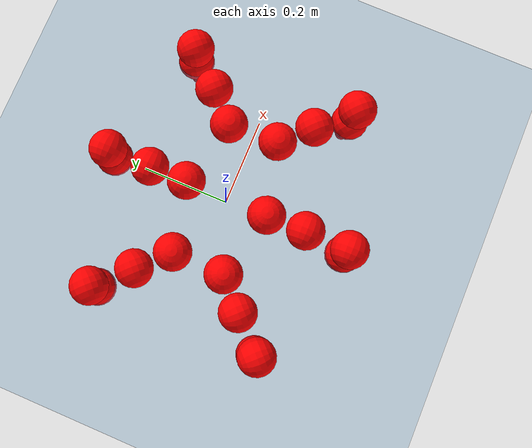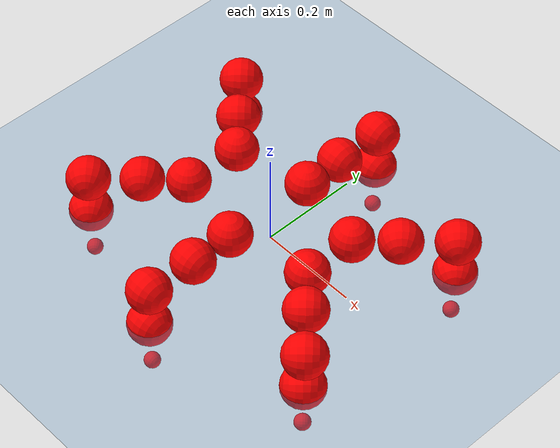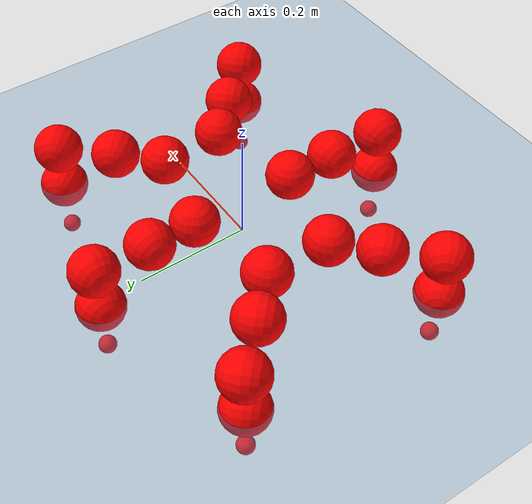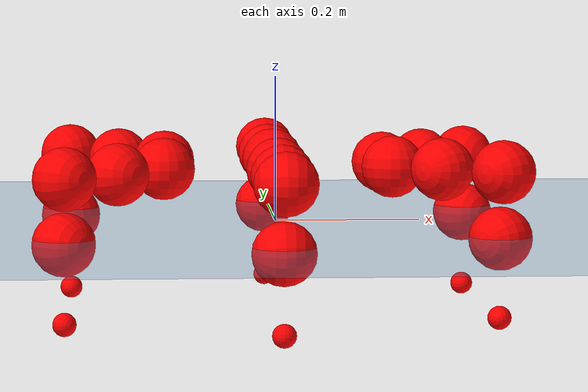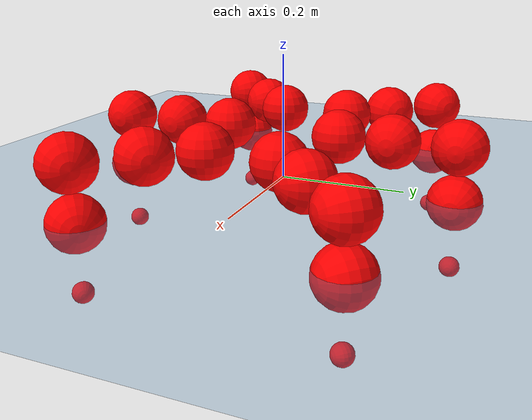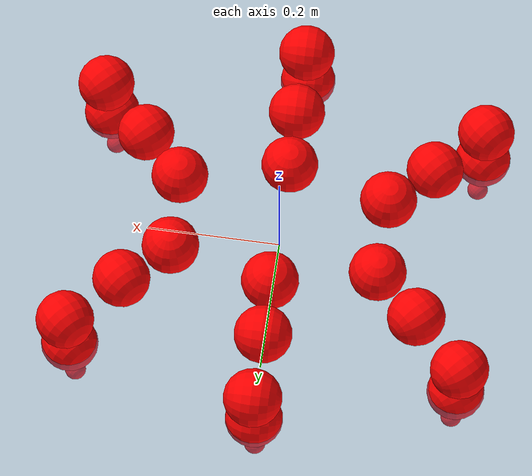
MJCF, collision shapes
<mujoco model="Golem">
  <compiler angle="radian" assetdir="assets" balanceinertia="true" inertiafromgeom="false"/>

  <option timestep="0.005" density="1.2" viscosity="2e-05"/>

  <size nkey="1"/>

  <visual>
    <quality shadowsize="8192"/>
    <map shadowclip="0.5"/>
  </visual>

  <default>
    <default class="/">
      <joint armature="0.01" damping="0.01" frictionloss="0.01"/>
      <geom contype="0" conaffinity="0" group="1" solref="-1000 -80"/>
      <site size="0.01 0.005 0.005" group="5"/>
      <general forcelimited="true" biastype="affine" gainprm="25" biasprm="0 -25 -0.5"/>
      <default class="visual">
        <geom type="mesh" group="2"/>
      </default>
      <default class="collision">
        <geom group="3"/>
      </default>
      <default class="foot">
        <geom size="0.01 0 0" condim="6" group="4" priority="1" solimp="0.015 1 0.01"/>
      </default>
      <default class="reward_collision_sphere">
        <geom group="5" rgba="1 0 0 1"/>
      </default>
    </default>
  </default>

  <asset>
    <texture type="skybox" colorspace="auto" name="//unnamed_texture_0" builtin="gradient" rgb1="0.95 0.95 0.95" rgb2="0.95 0.95 0.95" width="100" height="600"/>
    <texture type="2d" colorspace="auto" name="texplane" builtin="checker" rgb1="0.345 0.575 0.748" rgb2="0.345 0.575 0.748" markrgb="1 1 1" width="512" height="512"/>
    <material name="MatPlane" class="/" texture="texplane" texuniform="true" texrepeat="2 2" specular="0.9"/>
    <mesh name="body" class="/" file="body.stl" scale="0.001 0.001 0.001"/>
    <mesh name="coxa" class="/" file="coxa.stl" scale="0.001 0.001 0.001"/>
    <mesh name="femur" class="/" file="femur.stl" scale="0.001 0.001 0.001"/>
    <mesh name="tibia" class="/" file="tibia.stl" scale="0.001 0.001 0.001"/>
    <mesh name="tarsus" class="/" file="tarsus.stl" scale="0.001 0.001 0.001"/>
  </asset>

  <worldbody>
    <geom name="floor" class="/" size="100 100 0.125" type="plane" group="0" material="MatPlane"/>
    <light name="toplight_shadow" class="/" pos="0 0 5" dir="0.0990148 0.0990148 -0.990148" type="directional" ambient="0.04 0.04 0.04" diffuse="0.55 0.55 0.55" specular="0.12 0.12 0.12"/>
    <light name="toplight_fill" class="/" pos="0 0 5" dir="0.0990148 0.0990148 -0.990148" type="directional" castshadow="false" ambient="0.04 0.04 0.04" diffuse="0.3 0.3 0.3" specular="0.08 0.08 0.08"/>
    <body name="trunk" pos="-0.000135608 -0.00152955 -0.00178764" quat="1 0.00010708 0.000129715 0.000240043">
      <inertial pos="0.00313089 -0.00304039 -0.000688936" quat="0.99991 0.00965158 0.00914287 -0.00153353" mass="4.29932" diaginertia="0.00882242 0.00703886 0.0309573"/>
      <joint name="//unnamed_joint_0" type="free"/>
      <geom name="//unnamed_geom_1" class="/" pos="0 0 0.0802493" quat="1 0 0 0" type="mesh" rgba="0.9 0.9 0.9 1" mesh="body"/>
      <site name="imu" class="/" pos="0.11596 0.0016241 0.115794" size="0.0106121"/>
      <camera name="track" class="/" pos="0 -1.88849 0" quat="0.707107 0.707107 0 0" mode="trackcom"/>
      <camera name="ego_camera" class="/" pos="0.128113 0 0.125389" quat="-0.5 -0.5 0.5 0.5"/>
      <body name="coxa_RR" pos="-0.175919 -0.0791738 0.0800442" quat="0.382768 0.000603205 -0.000937399 -0.923844">
        <inertial pos="0.00100266 0.00263447 -0.00206722" quat="0.99991 -0.00673173 -0.000748916 0.011584" mass="0.23153" diaginertia="0.00872035 0.00723044 0.0290496"/>
        <joint name="coxa_joint_RR" class="/" pos="0 0 0" axis="-0.00592008 0.00681444 -0.999959" stiffness="0.00901133" range="-3.08491 3.08606" armature="0.0114591" damping="0" frictionloss="0.0120618"/>
        <geom name="//unnamed_geom_2" class="/" type="mesh" rgba="0.2 0.2 0.2 1" mesh="coxa"/>
        <geom name="//unnamed_geom_3" class="reward_collision_sphere" size="0.0424483" pos="-0.0295646 0 0"/>
        <body name="femur_RR" pos="0.0567389 -0.00208495 -0.00185358" quat="0.499591 -0.500161 0.499895 0.500353">
          <inertial pos="-0.000433514 -0.00165649 0.00233608" quat="0.999955 -0.00305884 0.00691587 -0.00567716" mass="0.239357" diaginertia="0.00956275 0.00727813 0.03091"/>
          <joint name="femur_joint_RR" class="/" pos="0 0 0" axis="-0.00272902 0.00264438 -0.999993" range="-3.08639 3.08552" armature="0.0107222" damping="0.0199385" frictionloss="0.010512"/>
          <geom name="//unnamed_geom_4" class="/" type="mesh" rgba="0.9 0.9 0.9 1" mesh="femur"/>
          <geom name="//unnamed_geom_5" class="reward_collision_sphere" size="0.0424483"/>
          <body name="tibia_RR" pos="-0.001281 -0.0997251 0.0017489" quat="9.74975e-05 1 8.8187e-05 0.000176739">
            <inertial pos="0.00087337 -0.000947757 0.00166624" quat="1 -9.59215e-06 4.7258e-05 -3.70699e-05" mass="0.237547" diaginertia="0.00920583 0.00747377 0.0304432"/>
            <joint name="tibia_joint_RR" class="/" pos="0 0 0" axis="0.00071654 -0.0024749 0.999997" stiffness="0.00280452" range="-3.15915 3.17695" armature="0.00930828" damping="0.0184497" frictionloss="0.00931263"/>
            <geom name="//unnamed_geom_6" class="/" type="mesh" rgba="0.2 0.2 0.2 1" mesh="tibia"/>
            <geom name="//unnamed_geom_7" class="reward_collision_sphere" size="0.0424483"/>
            <body name="tarsus_RR" pos="0.0861761 0.000875349 0.00142265" quat="0.999999 -0.000318771 -0.00110064 0.000296744">
              <inertial pos="0.0621313 -0.00130564 0.00144241" quat="0.507773 0.492794 0.504458 0.494816" mass="0.239082" diaginertia="0.0095127 0.00729407 0.0301716"/>
              <joint name="tarsus_joint_RR" class="/" pos="0 0 0" axis="0.00792584 -0.00474343 0.999957" range="-3.18545 3.13472" armature="0.00922633" damping="0.0112285" frictionloss="0.0111341"/>
              <geom name="//unnamed_geom_8" class="/" type="mesh" rgba="0.9 0.9 0.9 1" mesh="tarsus"/>
              <geom name="foot_1" class="foot" size="0.0105336" pos="0.110374 0 0" quat="0 -0.707107 0 0.707107"/>
              <geom name="//unnamed_geom_10" class="reward_collision_sphere" size="0.0424483"/>
              <geom name="//unnamed_geom_11" class="reward_collision_sphere" size="0.0159181" pos="0.10594 0 0"/>
              <site name="foot_1" class="foot" pos="0.110374 0 0" quat="0 -0.707107 0 0.707107" size="0.0106121"/>
            </body>
          </body>
        </body>
      </body>
      <body name="coxa_RM" pos="-0.00220073 -0.12428 0.082405" quat="0.706911 -0.00077677 -0.000599532 -0.707302">
        <inertial pos="0.00040247 0.000443235 -0.000169981" quat="0.999956 0.000648214 -0.00831063 0.00432999" mass="0.225734" diaginertia="0.00902554 0.00721788 0.0305771"/>
        <joint name="coxa_joint_RM" class="/" pos="0 0 0" axis="0.00646306 0.00479606 -0.999968" range="-3.13978 3.09055" armature="0.00930569" damping="0.0255149" frictionloss="0.0115224"/>
        <geom name="//unnamed_geom_12" class="/" type="mesh" rgba="0.2 0.2 0.2 1" mesh="coxa"/>
        <geom name="//unnamed_geom_13" class="reward_collision_sphere" size="0.0424483" pos="-0.0295646 0 0"/>
        <body name="femur_RM" pos="0.0607152 0.00168606 -0.00149559" quat="0.500055 -0.499803 0.500287 0.499855">
          <inertial pos="-0.000629918 0.00126578 -0.000956504" quat="0.999972 0.00734917 0.0005501 0.00129533" mass="0.245584" diaginertia="0.00926315 0.00757274 0.0299586"/>
          <joint name="femur_joint_RM" class="/" pos="0 0 0" axis="0.00157546 0.00219856 -0.999996" stiffness="0.00394935" range="-3.12895 3.18925" armature="0.011316" damping="0.0186343" frictionloss="0.0104449"/>
          <geom name="//unnamed_geom_14" class="/" type="mesh" rgba="0.9 0.9 0.9 1" mesh="femur"/>
          <geom name="//unnamed_geom_15" class="reward_collision_sphere" size="0.0424483"/>
          <body name="tibia_RM" pos="-0.00013719 -0.101949 -0.00107372" quat="0.000201477 1 -0.000140874 0.000322647">
            <inertial pos="-2.70956e-05 0.000233224 0.000926694" quat="0.999955 0.00165122 0.00924499 -0.00157145" mass="0.236954" diaginertia="0.00940926 0.00757497 0.0300991"/>
            <joint name="tibia_joint_RM" class="/" pos="0 0 0" axis="0.00314722 -0.00348876 0.999989" range="-3.08598 3.1698" armature="0.0112001" damping="0.0187574" frictionloss="0.0101557"/>
            <geom name="//unnamed_geom_16" class="/" type="mesh" rgba="0.2 0.2 0.2 1" mesh="tibia"/>
            <geom name="//unnamed_geom_17" class="reward_collision_sphere" size="0.0424483"/>
            <body name="tarsus_RM" pos="0.0893673 0.00184695 0.00249689" quat="1 -0.000655771 0.000199228 -0.000160749">
              <inertial pos="0.0583793 -0.00208104 -0.000522937" quat="0.496323 0.501829 0.499489 0.502336" mass="0.239546" diaginertia="0.00924098 0.00742097 0.0306412"/>
              <joint name="tarsus_joint_RM" class="/" pos="0 0 0" axis="-0.0133044 -2.77169e-05 0.999911" range="-3.08487 3.09879" armature="0.00923158" damping="0.00287443" frictionloss="0.011789"/>
              <geom name="//unnamed_geom_18" class="/" type="mesh" rgba="0.9 0.9 0.9 1" mesh="tarsus"/>
              <geom name="foot_2" class="foot" size="0.00982257" pos="0.110374 0 0" quat="0 -0.707107 0 0.707107"/>
              <geom name="//unnamed_geom_20" class="reward_collision_sphere" size="0.0424483"/>
              <geom name="//unnamed_geom_21" class="reward_collision_sphere" size="0.0159181" pos="0.10594 0 0"/>
              <site name="foot_2" class="foot" pos="0.110374 0 0" quat="0 -0.707107 0 0.707107" size="0.0106121"/>
            </body>
          </body>
        </body>
      </body>
      <body name="coxa_RF" pos="0.178299 -0.0761868 0.0812456" quat="0.923792 -0.00018921 0.000215618 -0.382894">
        <inertial pos="0.00110097 0.00013896 -0.00086616" quat="0.999953 -0.00587744 0.00755514 0.00131704" mass="0.235741" diaginertia="0.00903131 0.00734102 0.0294634"/>
        <joint name="coxa_joint_RF" class="/" pos="0 0 0" axis="0.0121412 0.0014573 -0.999925" stiffness="0.00131344" range="-3.13732 3.1012" armature="0.0098318" damping="0" frictionloss="0.0103752"/>
        <geom name="//unnamed_geom_22" class="/" type="mesh" rgba="0.2 0.2 0.2 1" mesh="coxa"/>
        <geom name="//unnamed_geom_23" class="reward_collision_sphere" size="0.0424483" pos="-0.0295646 0 0"/>
        <body name="femur_RF" pos="0.0575408 -0.00101772 0.00206208" quat="0.499837 -0.499947 0.499974 0.500242">
          <inertial pos="0.00131243 -0.00107631 -0.00225936" quat="0.999932 -0.00923216 -0.00350498 0.00623292" mass="0.236524" diaginertia="0.00896355 0.00724834 0.0303151"/>
          <joint name="femur_joint_RF" class="/" pos="0 0 0" axis="-0.0140241 0.00279626 -0.999898" range="-3.08741 3.14014" armature="0.0106084" damping="0.00981097" frictionloss="0.0110627"/>
          <geom name="//unnamed_geom_24" class="/" type="mesh" rgba="0.9 0.9 0.9 1" mesh="femur"/>
          <geom name="//unnamed_geom_25" class="reward_collision_sphere" size="0.0424483"/>
          <body name="tibia_RF" pos="-0.00287366 -0.102948 0.000100615" quat="0.000192206 0.999999 0.00122486 -0.000563399">
            <inertial pos="0.000499225 0.000656189 -0.000656219" quat="0.999999 -9.32801e-05 -0.00121278 -0.00104816" mass="0.254189" diaginertia="0.00923909 0.00752878 0.0312662"/>
            <joint name="tibia_joint_RF" class="/" pos="0 0 0" axis="-0.0022442 -0.00147216 0.999996" stiffness="0.0239156" range="-3.19015 3.12845" armature="0.0102742" damping="0.0371363" frictionloss="0.00950452"/>
            <geom name="//unnamed_geom_26" class="/" type="mesh" rgba="0.2 0.2 0.2 1" mesh="tibia"/>
            <geom name="//unnamed_geom_27" class="reward_collision_sphere" size="0.0424483"/>
            <body name="tarsus_RF" pos="0.0882579 -0.00299105 0.00164739" quat="1 2.89105e-05 -9.64024e-06 -2.66551e-05">
              <inertial pos="0.0622184 0.0017107 -0.000639717" quat="0.500748 0.498154 0.509988 0.490924" mass="0.230336" diaginertia="0.00869978 0.00723163 0.0304945"/>
              <joint name="tarsus_joint_RF" class="/" pos="0 0 0" axis="-0.00328652 -0.0086329 0.999957" stiffness="0.00857617" range="-3.16478 3.09652" armature="0.00936449" damping="0.00891535" frictionloss="0.0118015"/>
              <geom name="//unnamed_geom_28" class="/" type="mesh" rgba="0.9 0.9 0.9 1" mesh="tarsus"/>
              <geom name="foot_3" class="foot" size="0.011541" pos="0.110374 0 0" quat="0 -0.707107 0 0.707107"/>
              <geom name="//unnamed_geom_30" class="reward_collision_sphere" size="0.0424483"/>
              <geom name="//unnamed_geom_31" class="reward_collision_sphere" size="0.0159181" pos="0.10594 0 0"/>
              <site name="foot_3" class="foot" pos="0.110374 0 0" quat="0 -0.707107 0 0.707107" size="0.0106121"/>
            </body>
          </body>
        </body>
      </body>
      <body name="coxa_LR" pos="-0.174187 0.0813004 0.0799335" quat="0.382664 4.29008e-05 -4.10599e-05 0.923887">
        <inertial pos="-0.00237402 0.000374311 2.56964e-05" quat="0.999952 -0.000353601 0.00409273 -0.00889487" mass="0.245343" diaginertia="0.00918955 0.00751966 0.0317583"/>
        <joint name="coxa_joint_LR" class="/" pos="0 0 0" axis="0.00524813 -0.00273785 -0.999982" stiffness="0.0079892" range="-3.19203 3.1282" armature="0.010879" damping="0.0115798" frictionloss="0.0113049"/>
        <geom name="//unnamed_geom_32" class="/" type="mesh" rgba="0.2 0.2 0.2 1" mesh="coxa"/>
        <geom name="//unnamed_geom_33" class="reward_collision_sphere" size="0.0424483" pos="-0.0295646 0 0"/>
        <body name="femur_LR" pos="0.0595222 0.00131311 -0.00144181" quat="0.500614 -0.499191 0.499541 0.500653">
          <inertial pos="0.000526963 0.00127014 0.00257864" quat="0.999982 -0.00331702 -0.00493343 -0.000225997" mass="0.224593" diaginertia="0.00914479 0.00705087 0.0294456"/>
          <joint name="femur_joint_LR" class="/" pos="0 0 0" axis="-0.00868263 -0.0107167 0.999905" stiffness="0.000707018" range="-3.19102 3.19351" armature="0.00944182" damping="0.0142924" frictionloss="0.0101164"/>
          <geom name="//unnamed_geom_34" class="/" type="mesh" rgba="0.9 0.9 0.9 1" mesh="femur"/>
          <geom name="//unnamed_geom_35" class="reward_collision_sphere" size="0.0424483"/>
          <body name="tibia_LR" pos="-0.000439657 -0.101791 -0.00151774" quat="0.000111456 0.999999 0.000443998 0.00131415">
            <inertial pos="-0.00234179 0.00281645 0.000874445" quat="0.999973 -0.00356469 0.00517794 -0.0039107" mass="0.244459" diaginertia="0.00977876 0.00796492 0.0307687"/>
            <joint name="tibia_joint_LR" class="/" pos="0 0 0" axis="0.00249528 -0.00223013 -0.999994" range="-3.16418 3.16352" armature="0.0102165" damping="0" frictionloss="0.0104967"/>
            <geom name="//unnamed_geom_36" class="/" type="mesh" rgba="0.2 0.2 0.2 1" mesh="tibia"/>
            <geom name="//unnamed_geom_37" class="reward_collision_sphere" size="0.0424483"/>
            <body name="tarsus_LR" pos="0.0896508 -0.00148619 -0.00103225" quat="1 -8.86602e-06 3.02997e-05 8.8687e-06">
              <inertial pos="0.0592709 0.000139502 0.00192989" quat="0.500036 0.499988 0.500247 0.499729" mass="0.232856" diaginertia="0.00896691 0.00703647 0.0308327"/>
              <joint name="tarsus_joint_LR" class="/" pos="0 0 0" axis="0.00515077 0.00429034 -0.999978" stiffness="0.00943001" range="-3.18267 3.17972" armature="0.0107303" damping="0.00924353" frictionloss="0.00950112"/>
              <geom name="//unnamed_geom_38" class="/" type="mesh" rgba="0.9 0.9 0.9 1" mesh="tarsus"/>
              <geom name="foot_4" class="foot" size="0.0114929" pos="0.110374 0 0" quat="0.707107 0 -0.707107 0"/>
              <geom name="//unnamed_geom_40" class="reward_collision_sphere" size="0.0424483"/>
              <geom name="//unnamed_geom_41" class="reward_collision_sphere" size="0.0159181" pos="0.10594 0 0"/>
              <site name="foot_4" class="foot" pos="0.110374 0 0" quat="0.707107 0 -0.707107 0" size="0.0106121"/>
            </body>
          </body>
        </body>
      </body>
      <body name="coxa_LM" pos="0.000561924 0.124484 0.0795092" quat="0.707722 -0.00012807 -0.00100096 0.706491">
        <inertial pos="-0.000392432 -0.000566557 0.000962657" quat="0.999961 0.00624338 0.00624059 0.000116265" mass="0.238158" diaginertia="0.00990074 0.00782459 0.0319626"/>
        <joint name="coxa_joint_LM" class="/" pos="0 0 0" axis="-0.00575547 -0.00984736 -0.999935" range="-3.17504 3.15408" armature="0.0121397" damping="0.0125286" frictionloss="0.0107068"/>
        <geom name="//unnamed_geom_42" class="/" type="mesh" rgba="0.2 0.2 0.2 1" mesh="coxa"/>
        <geom name="//unnamed_geom_43" class="reward_collision_sphere" size="0.0424483" pos="-0.0295646 0 0"/>
        <body name="femur_LM" pos="0.0560525 0.00215549 0.00015671" quat="0.500006 -0.499996 0.500007 0.499991">
          <inertial pos="-0.00114766 0.000350832 0.00214291" quat="0.999985 0.000975938 0.00533598 0.000206269" mass="0.235994" diaginertia="0.00898237 0.00735213 0.0296965"/>
          <joint name="femur_joint_LM" class="/" pos="0 0 0" axis="-0.00123175 0.00986206 0.999951" stiffness="0.00966188" range="-3.09287 3.17563" armature="0.0096297" damping="0.0156224" frictionloss="0.0104512"/>
          <geom name="//unnamed_geom_44" class="/" type="mesh" rgba="0.9 0.9 0.9 1" mesh="femur"/>
          <geom name="//unnamed_geom_45" class="reward_collision_sphere" size="0.0424483"/>
          <body name="tibia_LM" pos="-0.00111869 -0.0999719 -0.000336632" quat="-0.00118243 0.999999 0.000496837 0.000483246">
            <inertial pos="0.00276773 -0.000904786 0.000244047" quat="0.999968 -0.000174347 -0.00453838 -0.00655317" mass="0.253402" diaginertia="0.00957085 0.00778025 0.03206"/>
            <joint name="tibia_joint_LM" class="/" pos="0 0 0" axis="0.00155185 0.00108121 -0.999998" stiffness="0.00830982" range="-3.12964 3.08981" armature="0.00905625" damping="0.0219119" frictionloss="0.010926"/>
            <geom name="//unnamed_geom_46" class="/" type="mesh" rgba="0.2 0.2 0.2 1" mesh="tibia"/>
            <geom name="//unnamed_geom_47" class="reward_collision_sphere" size="0.0424483"/>
            <body name="tarsus_LM" pos="0.0862797 -0.00170743 -0.00079776" quat="1 5.84317e-05 0.000342807 -1.99949e-05">
              <inertial pos="0.0563776 -0.000394625 -0.000980631" quat="0.509449 0.495086 0.494152 0.501165" mass="0.249154" diaginertia="0.00928238 0.00799369 0.0308455"/>
              <joint name="tarsus_joint_LM" class="/" pos="0 0 0" axis="0.00506799 0.0103632 -0.999933" range="-3.14279 3.13071" armature="0.00960411" damping="0" frictionloss="0.00969666"/>
              <geom name="//unnamed_geom_48" class="/" type="mesh" rgba="0.9 0.9 0.9 1" mesh="tarsus"/>
              <geom name="foot_5" class="foot" size="0.0115446" pos="0.110374 0 0" quat="0.707107 0 -0.707107 0"/>
              <geom name="//unnamed_geom_50" class="reward_collision_sphere" size="0.0424483"/>
              <geom name="//unnamed_geom_51" class="reward_collision_sphere" size="0.0159181" pos="0.10594 0 0"/>
              <site name="foot_5" class="foot" pos="0.110374 0 0" quat="0.707107 0 -0.707107 0" size="0.0106121"/>
            </body>
          </body>
        </body>
      </body>
      <body name="coxa_LF" pos="0.174293 0.0795891 0.0774609" quat="0.923504 -0.000373156 0.000259783 0.383589">
        <inertial pos="0.00099811 0.00235422 -0.00139002" quat="0.999916 0.0104787 -0.00631852 -0.00438467" mass="0.239677" diaginertia="0.00922812 0.00763587 0.0310732"/>
        <joint name="coxa_joint_LF" class="/" pos="0 0 0" axis="0.0017742 0.00559806 -0.999983" range="-3.18439 3.13532" armature="0.012194" damping="0.0232636" frictionloss="0.0100698"/>
        <geom name="//unnamed_geom_52" class="/" type="mesh" rgba="0.2 0.2 0.2 1" mesh="coxa"/>
        <geom name="//unnamed_geom_53" class="reward_collision_sphere" size="0.0424483" pos="-0.0295646 0 0"/>
        <body name="femur_LF" pos="0.058622 -0.000541583 -0.000654128" quat="0.499602 -0.50016 0.500042 0.500196">
          <inertial pos="0.000235137 -0.0022957 0.0025506" quat="0.999999 0.000648357 -0.000791695 0.00010746" mass="0.247283" diaginertia="0.00946321 0.0075036 0.0310812"/>
          <joint name="femur_joint_LF" class="/" pos="0 0 0" axis="0.00110719 -0.00214285 0.999997" range="-3.1911 3.15567" armature="0.011644" damping="0" frictionloss="0.011108"/>
          <geom name="//unnamed_geom_54" class="/" type="mesh" rgba="0.9 0.9 0.9 1" mesh="femur"/>
          <geom name="//unnamed_geom_55" class="reward_collision_sphere" size="0.0424483"/>
          <body name="tibia_LF" pos="0.0020978 -0.10272 0.00303709" quat="-2.72596e-05 0.999999 -0.000233927 0.00116526">
            <inertial pos="0.00194787 -0.000360887 -0.00240585" quat="1 2.98936e-05 0.000146485 9.85333e-05" mass="0.237607" diaginertia="0.00884919 0.00735388 0.0293029"/>
            <joint name="tibia_joint_LF" class="/" pos="0 0 0" axis="0.00748304 -0.000201625 -0.999972" stiffness="0.0185469" range="-3.14148 3.12368" armature="0.00916573" damping="0.0196703" frictionloss="0.0119479"/>
            <geom name="//unnamed_geom_56" class="/" type="mesh" rgba="0.2 0.2 0.2 1" mesh="tibia"/>
            <geom name="//unnamed_geom_57" class="reward_collision_sphere" size="0.0424483"/>
            <body name="tarsus_LF" pos="0.0843198 0.0005825 -0.000999962" quat="1 0.000109001 0.000174764 -4.41963e-05">
              <inertial pos="0.0617218 0.00298686 -0.00259837" quat="0.48986 0.505978 0.505289 0.498704" mass="0.230272" diaginertia="0.00926475 0.00746011 0.0306638"/>
              <joint name="tarsus_joint_LF" class="/" pos="0 0 0" axis="0.00175069 -0.0149758 -0.999886" stiffness="0.031242" range="-3.08942 3.11229" armature="0.0108602" damping="0.0168061" frictionloss="0.00923019"/>
              <geom name="//unnamed_geom_58" class="/" type="mesh" rgba="0.9 0.9 0.9 1" mesh="tarsus"/>
              <geom name="foot_6" class="foot" size="0.0108916" pos="0.110374 0 0" quat="0.707107 0 -0.707107 0"/>
              <geom name="//unnamed_geom_60" class="reward_collision_sphere" size="0.0424483"/>
              <geom name="//unnamed_geom_61" class="reward_collision_sphere" size="0.0159181" pos="0.10594 0 0"/>
              <site name="foot_6" class="foot" pos="0.110374 0 0" quat="0.707107 0 -0.707107 0" size="0.0106121"/>
            </body>
          </body>
        </body>
      </body>
    </body>
  </worldbody>

  <contact>
    <pair class="/" geom1="floor" geom2="foot_1" name="//unnamed_contact_0"/>
    <pair class="/" geom1="floor" geom2="foot_2" name="//unnamed_contact_1"/>
    <pair class="/" geom1="floor" geom2="foot_3" name="//unnamed_contact_2"/>
    <pair class="/" geom1="floor" geom2="foot_4" name="//unnamed_contact_3"/>
    <pair class="/" geom1="floor" geom2="foot_5" name="//unnamed_contact_4"/>
    <pair class="/" geom1="floor" geom2="foot_6" name="//unnamed_contact_5"/>
  </contact>

  <actuator>
    <general name="coxa_joint_RR" class="/" joint="coxa_joint_RR" forcerange="-7.61384 7.61384" gainprm="25.8118" biasprm="0 -25.8118 -0.580418"/>
    <general name="femur_joint_RR" class="/" joint="femur_joint_RR" forcerange="-8.47277 8.47277" gainprm="25.8118" biasprm="0 -25.8118 -0.580418"/>
    <general name="tibia_joint_RR" class="/" joint="tibia_joint_RR" forcerange="-7.84877 7.84877" gainprm="25.8118" biasprm="0 -25.8118 -0.580418"/>
    <general name="tarsus_joint_RR" class="/" joint="tarsus_joint_RR" forcerange="-7.91929 7.91929" gainprm="25.8118" biasprm="0 -25.8118 -0.580418"/>
    <general name="coxa_joint_RM" class="/" joint="coxa_joint_RM" forcerange="-6.95423 6.95423" gainprm="25.8118" biasprm="0 -25.8118 -0.580418"/>
    <general name="femur_joint_RM" class="/" joint="femur_joint_RM" forcerange="-7.89686 7.89686" gainprm="25.8118" biasprm="0 -25.8118 -0.580418"/>
    <general name="tibia_joint_RM" class="/" joint="tibia_joint_RM" forcerange="-8.5012 8.5012" gainprm="25.8118" biasprm="0 -25.8118 -0.580418"/>
    <general name="tarsus_joint_RM" class="/" joint="tarsus_joint_RM" forcerange="-8.53026 8.53026" gainprm="25.8118" biasprm="0 -25.8118 -0.580418"/>
    <general name="coxa_joint_RF" class="/" joint="coxa_joint_RF" forcerange="-7.56842 7.56842" gainprm="25.8118" biasprm="0 -25.8118 -0.580418"/>
    <general name="femur_joint_RF" class="/" joint="femur_joint_RF" forcerange="-8.08421 8.08421" gainprm="25.8118" biasprm="0 -25.8118 -0.580418"/>
    <general name="tibia_joint_RF" class="/" joint="tibia_joint_RF" forcerange="-8.54051 8.54051" gainprm="25.8118" biasprm="0 -25.8118 -0.580418"/>
    <general name="tarsus_joint_RF" class="/" joint="tarsus_joint_RF" forcerange="-8.18134 8.18134" gainprm="25.8118" biasprm="0 -25.8118 -0.580418"/>
    <general name="coxa_joint_LR" class="/" joint="coxa_joint_LR" forcerange="-7.54614 7.54614" gainprm="25.8118" biasprm="0 -25.8118 -0.580418"/>
    <general name="femur_joint_LR" class="/" joint="femur_joint_LR" forcerange="-7.68647 7.68647" gainprm="25.8118" biasprm="0 -25.8118 -0.580418"/>
    <general name="tibia_joint_LR" class="/" joint="tibia_joint_LR" forcerange="-7.61993 7.61993" gainprm="25.8118" biasprm="0 -25.8118 -0.580418"/>
    <general name="tarsus_joint_LR" class="/" joint="tarsus_joint_LR" forcerange="-7.5871 7.5871" gainprm="25.8118" biasprm="0 -25.8118 -0.580418"/>
    <general name="coxa_joint_LM" class="/" joint="coxa_joint_LM" forcerange="-7.14477 7.14477" gainprm="25.8118" biasprm="0 -25.8118 -0.580418"/>
    <general name="femur_joint_LM" class="/" joint="femur_joint_LM" forcerange="-7.21889 7.21889" gainprm="25.8118" biasprm="0 -25.8118 -0.580418"/>
    <general name="tibia_joint_LM" class="/" joint="tibia_joint_LM" forcerange="-7.67297 7.67297" gainprm="25.8118" biasprm="0 -25.8118 -0.580418"/>
    <general name="tarsus_joint_LM" class="/" joint="tarsus_joint_LM" forcerange="-8.53562 8.53562" gainprm="25.8118" biasprm="0 -25.8118 -0.580418"/>
    <general name="coxa_joint_LF" class="/" joint="coxa_joint_LF" forcerange="-7.04677 7.04677" gainprm="25.8118" biasprm="0 -25.8118 -0.580418"/>
    <general name="femur_joint_LF" class="/" joint="femur_joint_LF" forcerange="-7.88185 7.88185" gainprm="25.8118" biasprm="0 -25.8118 -0.580418"/>
    <general name="tibia_joint_LF" class="/" joint="tibia_joint_LF" forcerange="-7.60237 7.60237" gainprm="25.8118" biasprm="0 -25.8118 -0.580418"/>
    <general name="tarsus_joint_LF" class="/" joint="tarsus_joint_LF" forcerange="-7.7798 7.7798" gainprm="25.8118" biasprm="0 -25.8118 -0.580418"/>
  </actuator>

  <sensor>
    <gyro site="imu" name="imu_angular_velocity"/>
    <velocimeter site="imu" name="imu_linear_velocity"/>
    <framelinvel objtype="site" objname="foot_1" name="foot_1_global_linear_velocity"/>
    <framelinvel objtype="site" objname="foot_2" name="foot_2_global_linear_velocity"/>
    <framelinvel objtype="site" objname="foot_3" name="foot_3_global_linear_velocity"/>
    <framelinvel objtype="site" objname="foot_4" name="foot_4_global_linear_velocity"/>
    <framelinvel objtype="site" objname="foot_5" name="foot_5_global_linear_velocity"/>
    <framelinvel objtype="site" objname="foot_6" name="foot_6_global_linear_velocity"/>
  </sensor>

  <keyframe>
    <key name="home" qpos="0 0 0.1457 1 0 0 0 0 0 0 0 0 0 0 0 0 0 0 0 0 0 0 0 0 0 0 0 0 0 0 0"/>
  </keyframe>
</mujoco>
